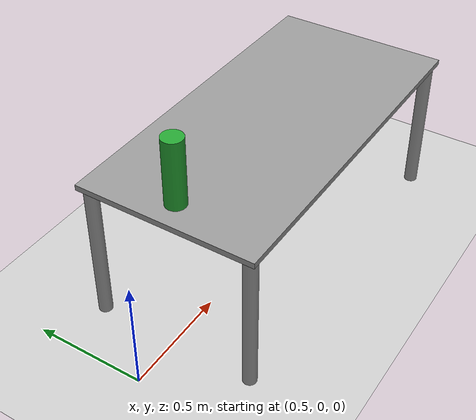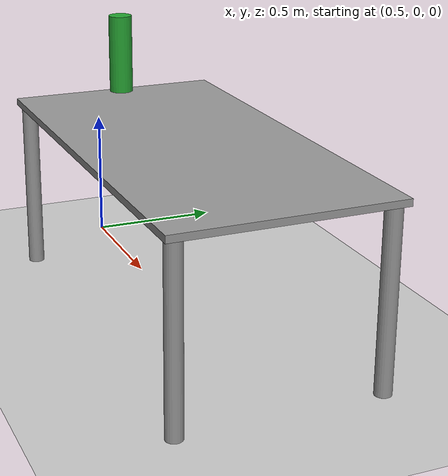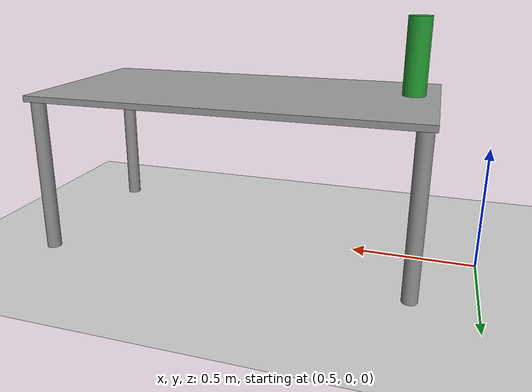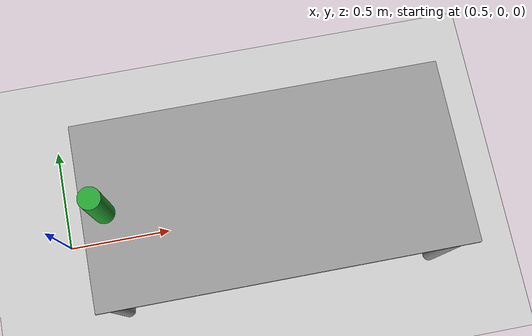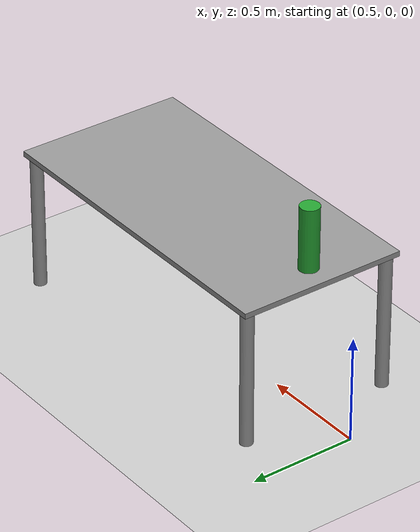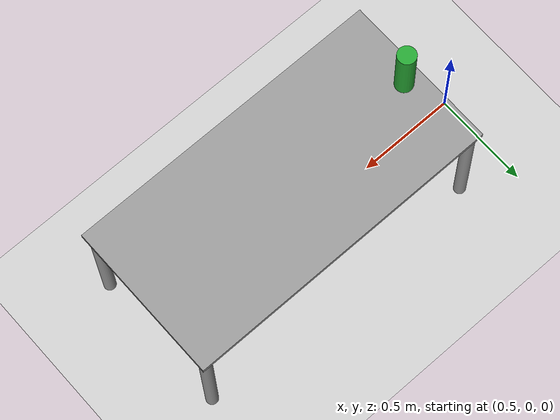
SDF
<?xml version="1.0" ?>
<sdf version="1.4">
  <world name="default">
    <!-- A global light source -->
    <include>
      <uri>model://sun</uri>
    </include>
    <!-- A ground plane -->
    <include>
      <uri>model://ground_plane</uri>
    </include>
    <physics type='ode'>
      <max_step_size>0.001</max_step_size>
      <real_time_factor>1</real_time_factor>
      <real_time_update_rate>0</real_time_update_rate>
      <gravity>0 0 0</gravity>
      <ode>
        <solver>
          <iters>100</iters>
          <sor>1.0</sor>
        </solver>
      </ode>
    </physics>

    <include>
      <uri>model://tams_table</uri>
      <name>table</name>
      <pose>1.5 0 0   0 0 0</pose>
    </include>

    <model name='cylinder'>
      <pose>0.8 0 0.84 0 0 0</pose>
      <link name='link'>
        <inertial>
          <mass>0.5</mass>
          <inertia>
            <ixx>1</ixx>
            <ixy>0</ixy>
            <ixz>0</ixz>
            <iyy>1</iyy>
            <iyz>0</iyz>
            <izz>1</izz>
          </inertia>
        </inertial>
        <collision name='collision'>
          <geometry>
            <cylinder>
              <radius>0.045</radius>
              <length>0.3</length>
            </cylinder>
          </geometry>
          <max_contacts>10</max_contacts>
          <surface>
            <bounce/>
            <friction>
              <ode/>
            </friction>
            <contact>
              <ode/>
            </contact>
          </surface>
        </collision>
        <visual name='visual'>
          <geometry>
            <cylinder>
              <radius>0.045</radius>
              <length>0.3</length>
            </cylinder>
          </geometry>
          <material>
            <script>
              <uri>file://media/materials/scripts/gazebo.material</uri>
              <name>Gazebo/Green</name>
            </script>
          </material>
        </visual>
        <velocity_decay>
          <linear>0</linear>
          <angular>0</angular>
        </velocity_decay>
        <self_collide>0</self_collide>
        <kinematic>0</kinematic>
        <gravity>1</gravity>
      </link>
      <static>0</static>
    </model>

  </world>
</sdf>

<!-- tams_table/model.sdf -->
<sdf version="1.4">
  <model name="tams_table">
    <static>true</static>
    <link name="link">
      <collision name="surface">
        <pose>0 0 0.66 0 0 0</pose>
        <geometry>
          <box>
            <size>1.6 0.8 0.025</size>
          </box>
        </geometry>
        <surface>
          <friction>
            <ode>
              <mu>0.6</mu>
              <mu2>0.6</mu2>
            </ode>
          </friction>
        </surface>
      </collision>
      <visual name="surface">
        <pose>0 0 0.66 0 0 0</pose>
        <geometry>
          <box>
            <size>1.6 0.8 0.025</size>
          </box>
        </geometry>
        <material>
          <script>
            <uri>file://media/materials/scripts/gazebo.material</uri>
            <name>Gazebo/Grey</name>
          </script>
        </material>
      </visual>
      <collision name="front_left_leg">
        <pose>0.76 0.36 0.33 0 0 0</pose>
        <geometry>
          <cylinder>
            <radius>0.03</radius>
            <length>0.66</length>
          </cylinder>
        </geometry>
      </collision>
      <visual name="front_left_leg">
        <pose>0.76 0.36 0.33 0 0 0</pose>
        <geometry>
          <cylinder>
            <radius>0.03</radius>
            <length>0.66</length>
          </cylinder>
        </geometry>
        <material>
          <script>
            <uri>file://media/materials/scripts/gazebo.material</uri>
            <name>Gazebo/Grey</name>
          </script>
        </material>
      </visual>
      <collision name="front_right_leg">
        <pose>0.76 -0.36 0.33 0 0 0</pose>
        <geometry>
          <cylinder>
            <radius>0.03</radius>
            <length>0.66</length>
          </cylinder>
        </geometry>
      </collision>
      <visual name="front_right_leg">
        <pose>0.76 -0.36 0.33 0 0 0</pose>
        <geometry>
          <cylinder>
            <radius>0.03</radius>
            <length>0.66</length>
          </cylinder>
        </geometry>
        <material>
          <script>
            <uri>file://media/materials/scripts/gazebo.material</uri>
            <name>Gazebo/Grey</name>
          </script>
        </material>
      </visual>
      <collision name="back_right_leg">
        <pose>-0.76 -0.36 0.33 0 0 0</pose>
        <geometry>
          <cylinder>
            <radius>0.03</radius>
            <length>0.66</length>
          </cylinder>
        </geometry>
      </collision>
      <visual name="back_right_leg">
        <pose>-0.76 -0.36 0.33 0 0 0</pose>
        <geometry>
          <cylinder>
            <radius>0.03</radius>
            <length>0.66</length>
          </cylinder>
        </geometry>
        <material>
          <script>
            <uri>file://media/materials/scripts/gazebo.material</uri>
            <name>Gazebo/Grey</name>
          </script>
        </material>
      </visual>
      <collision name="back_left_leg">
        <pose>-0.76 0.36 0.33 0 0 0</pose>
        <geometry>
          <cylinder>
            <radius>0.03</radius>
            <length>0.66</length>
          </cylinder>
        </geometry>
      </collision>
      <visual name="back_left_leg">
        <pose>-0.76 0.36 0.33 0 0 0</pose>
        <geometry>
          <cylinder>
            <radius>0.03</radius>
            <length>0.66</length>
          </cylinder>
        </geometry>
        <material>
          <script>
            <uri>file://media/materials/scripts/gazebo.material</uri>
            <name>Gazebo/Grey</name>
          </script>
        </material>
      </visual>
    </link>
  </model>
</sdf>
